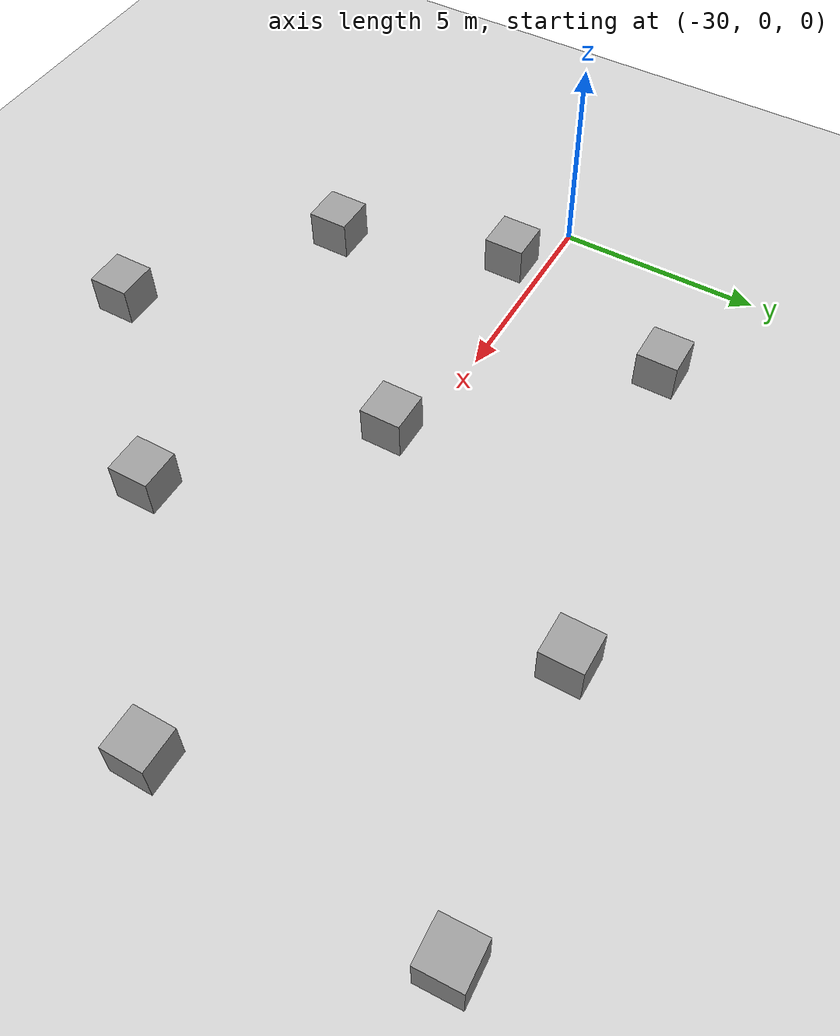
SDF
<sdf version="1.6">
 <world name="default">
  <physics name="default_physics" default="0" type="ode">
   <ode>
    <solver>
     <type>quick</type>
     <iters>100</iters>
     <sor>1</sor>
     <use_dynamic_moi_rescaling>0</use_dynamic_moi_rescaling>
    </solver>
    <constraints>
     <cfm>0</cfm>
     <erp>0.2</erp>
     <contact_max_correcting_vel>0.1</contact_max_correcting_vel>
     <contact_surface_layer>0</contact_surface_layer>
    </constraints>
   </ode>
   <real_time_update_rate>-1</real_time_update_rate>
   <max_step_size>0.001</max_step_size>
   <real_time_factor>1</real_time_factor>
  </physics>
  <gravity>0 0 -9.8</gravity>
  <light name="sun" type="directional">
   <pose>0 0 10 0 -0 0</pose>
   <diffuse>0.8 0.8 0.8 1</diffuse>
   <specular>0.2 0.2 0.2 1</specular>
   <attenuation>
    <range>1000</range>
    <constant>0.9</constant>
    <linear>0.01</linear>
    <quadratic>0.001</quadratic>
   </attenuation>
   <direction>-0.5 0.1 -0.9</direction>
  </light>
  <model name="ground_plane">
   <static>1</static>
   <link name="link">
    <collision name="collision">
     <geometry><plane><normal>0 0 1</normal><size>5000 5000</size></plane></geometry>
     <surface><friction><ode><mu>100</mu><mu2>50</mu2></ode></friction></surface>
    </collision>
    <visual name="runway">
     <pose>0 0 0.005 0 -0 0</pose>
     <cast_shadows>0</cast_shadows>
     <geometry><plane><normal>0 0 1</normal><size>1829 45</size></plane></geometry>
     <material>
      <script><uri>file://media/materials/scripts/gazebo.material</uri><name>Gazebo/Runway</name></script>
     </material>
    </visual>
    <visual name="grass">
     <pose>0 0 -0.1 0 -0 0</pose>
     <cast_shadows>0</cast_shadows>
     <geometry><plane><normal>0 0 1</normal><size>5000 5000</size></plane></geometry>
     <material>
      <script><uri>file://media/materials/scripts/gazebo.material</uri><name>Gazebo/Grass</name></script>
     </material>
    </visual>
   </link>
  </model>
  <magnetic_field>6e-06 2.3e-05 -4.2e-05</magnetic_field>
  <atmosphere type="adiabatic"/>
  <scene><ambient>0.4 0.4 0.4 1</ambient><background>0.7 0.7 0.7 1</background><shadows>1</shadows></scene>
  <audio><device>default</device></audio>
  <spherical_coordinates>
   <surface_model>EARTH_WGS84</surface_model>
   <latitude_deg>0</latitude_deg>
   <longitude_deg>0</longitude_deg>
   <elevation>0</elevation>
   <heading_deg>0</heading_deg>
  </spherical_coordinates>
  <model name="unit_box">
   <pose>-22.1943 -0.618917 0.5 0 -0 0</pose>
   <link name="link">
    <inertial>
     <mass>1</mass>
     <inertia>
      <ixx>0.166667</ixx>
      <ixy>0</ixy>
      <ixz>0</ixz>
      <iyy>0.166667</iyy>
      <iyz>0</iyz>
      <izz>0.166667</izz>
     </inertia>
    </inertial>
    <collision name="collision"><geometry><box><size>1 1 1</size></box></geometry></collision>
    <visual name="visual">
     <geometry><box><size>1 1 1</size></box></geometry>
     <material>
      <script><name>Gazebo/Grey</name><uri>file://media/materials/scripts/gazebo.material</uri></script>
     </material>
    </visual>
   </link>
  </model>
  <model name="unit_box_0">
   <pose>-26.7283 3.98221 0.5 0 -0 0</pose>
   <link name="link">
    <inertial>
     <mass>1</mass>
     <inertia>
      <ixx>0.166667</ixx>
      <ixy>0</ixy>
      <ixz>0</ixz>
      <iyy>0.166667</iyy>
      <iyz>0</iyz>
      <izz>0.166667</izz>
     </inertia>
    </inertial>
    <collision name="collision"><geometry><box><size>1 1 1</size></box></geometry></collision>
    <visual name="visual">
     <geometry><box><size>1 1 1</size></box></geometry>
     <material>
      <script><name>Gazebo/Grey</name><uri>file://media/materials/scripts/gazebo.material</uri></script>
     </material>
    </visual>
   </link>
  </model>
  <model name="unit_box_1">
   <pose>-13.12 -0.519693 0.5 0 -0 0</pose>
   <link name="link">
    <inertial>
     <mass>1</mass>
     <inertia>
      <ixx>0.166667</ixx>
      <ixy>0</ixy>
      <ixz>0</ixz>
      <iyy>0.166667</iyy>
      <iyz>0</iyz>
      <izz>0.166667</izz>
     </inertia>
    </inertial>
    <collision name="collision"><geometry><box><size>1 1 1</size></box></geometry></collision>
    <visual name="visual">
     <geometry><box><size>1 1 1</size></box></geometry>
     <material>
      <script><name>Gazebo/Grey</name><uri>file://media/materials/scripts/gazebo.material</uri></script>
     </material>
    </visual>
   </link>
  </model>
  <model name="unit_box_2">
   <pose>-18.7928 5.4939 0.5 0 -0 0</pose>
   <link name="link">
    <inertial>
     <mass>1</mass>
     <inertia>
      <ixx>0.166667</ixx>
      <ixy>0</ixy>
      <ixz>0</ixz>
      <iyy>0.166667</iyy>
      <iyz>0</iyz>
      <izz>0.166667</izz>
     </inertia>
    </inertial>
    <collision name="collision"><geometry><box><size>1 1 1</size></box></geometry></collision>
    <visual name="visual">
     <geometry><box><size>1 1 1</size></box></geometry>
     <material>
      <script><name>Gazebo/Grey</name><uri>file://media/materials/scripts/gazebo.material</uri></script>
     </material>
    </visual>
   </link>
  </model>
  <model name="unit_box_3">
   <pose>-12.6721 6.28861 0.5 0 -0 0.049153</pose>
   <link name="link">
    <inertial>
     <mass>1</mass>
     <inertia>
      <ixx>0.166667</ixx>
      <ixy>0</ixy>
      <ixz>0</ixz>
      <iyy>0.166667</iyy>
      <iyz>0</iyz>
      <izz>0.166667</izz>
     </inertia>
    </inertial>
    <collision name="collision"><geometry><box><size>1 1 1</size></box></geometry></collision>
    <visual name="visual">
     <geometry><box><size>1 1 1</size></box></geometry>
     <material>
      <script><name>Gazebo/Grey</name><uri>file://media/materials/scripts/gazebo.material</uri></script>
     </material>
    </visual>
   </link>
  </model>
  <model name="unit_box_4">
   <pose>-22.4776 -8.39175 0.5 0 -0 0</pose>
   <link name="link">
    <inertial>
     <mass>1</mass>
     <inertia>
      <ixx>0.166667</ixx>
      <ixy>0</ixy>
      <ixz>0</ixz>
      <iyy>0.166667</iyy>
      <iyz>0</iyz>
      <izz>0.166667</izz>
     </inertia>
    </inertial>
    <collision name="collision"><geometry><box><size>1 1 1</size></box></geometry></collision>
    <visual name="visual">
     <geometry><box><size>1 1 1</size></box></geometry>
     <material>
      <script><name>Gazebo/Grey</name><uri>file://media/materials/scripts/gazebo.material</uri></script>
     </material>
    </visual>
   </link>
  </model>
  <model name="unit_box_5">
   <pose>-28.372 -0.826432 0.5 0 -0 0</pose>
   <link name="link">
    <inertial>
     <mass>1</mass>
     <inertia>
      <ixx>0.166667</ixx>
      <ixy>0</ixy>
      <ixz>0</ixz>
      <iyy>0.166667</iyy>
      <iyz>0</iyz>
      <izz>0.166667</izz>
     </inertia>
    </inertial>
    <collision name="collision"><geometry><box><size>1 1 1</size></box></geometry></collision>
    <visual name="visual">
     <geometry><box><size>1 1 1</size></box></geometry>
     <material>
      <script><name>Gazebo/Grey</name><uri>file://media/materials/scripts/gazebo.material</uri></script>
     </material>
    </visual>
   </link>
  </model>
  <model name="unit_box_6">
   <pose>-18.2056 -4.41928 0.5 0 -0 0</pose>
   <link name="link">
    <inertial>
     <mass>1</mass>
     <inertia>
      <ixx>0.166667</ixx>
      <ixy>0</ixy>
      <ixz>0</ixz>
      <iyy>0.166667</iyy>
      <iyz>0</iyz>
      <izz>0.166667</izz>
     </inertia>
    </inertial>
    <collision name="collision"><geometry><box><size>1 1 1</size></box></geometry></collision>
    <visual name="visual">
     <geometry><box><size>1 1 1</size></box></geometry>
     <material>
      <script><name>Gazebo/Grey</name><uri>file://media/materials/scripts/gazebo.material</uri></script>
     </material>
    </visual>
   </link>
  </model>
  <model name="unit_box_7">
   <pose>-27.0277 -5.09842 0.5 0 -0 0</pose>
   <link name="link">
    <inertial>
     <mass>1</mass>
     <inertia>
      <ixx>0.166667</ixx>
      <ixy>0</ixy>
      <ixz>0</ixz>
      <iyy>0.166667</iyy>
      <iyz>0</iyz>
      <izz>0.166667</izz>
     </inertia>
    </inertial>
    <collision name="collision"><geometry><box><size>1 1 1</size></box></geometry></collision>
    <visual name="visual">
     <geometry><box><size>1 1 1</size></box></geometry>
     <material>
      <script><name>Gazebo/Grey</name><uri>file://media/materials/scripts/gazebo.material</uri></script>
     </material>
    </visual>
   </link>
  </model>
 </world>
</sdf>
